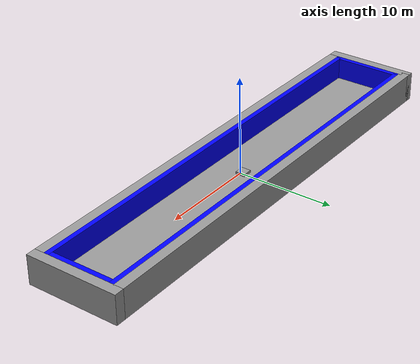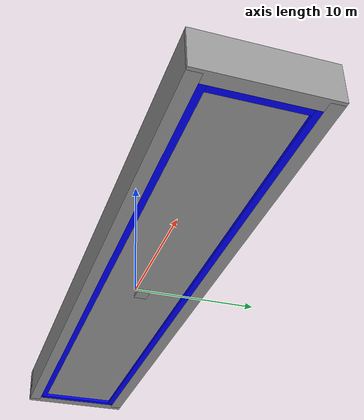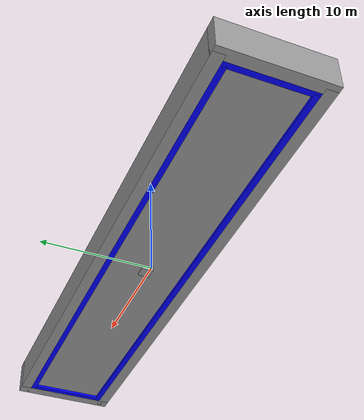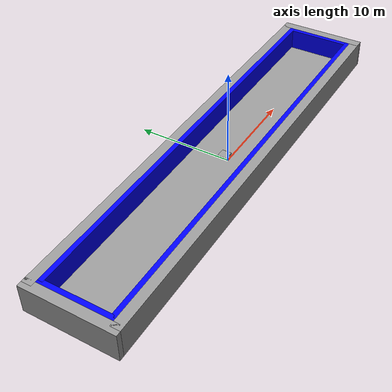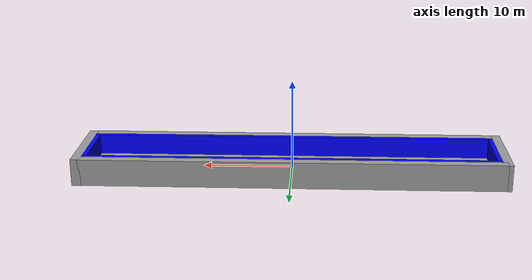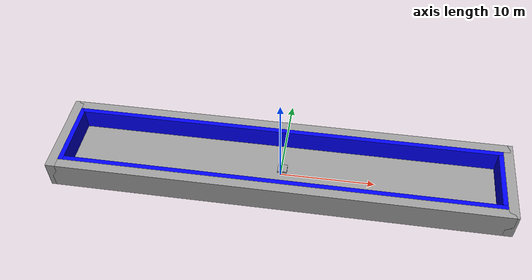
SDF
<?xml version='1.0'?>
<sdf version='1.6'>
  <model name='Pool'>
    <link name='link_0'>
      <pose frame=''>0.166667 0.472222 0 0 -0 0</pose>
      <inertial>
        <mass>1</mass>
        <inertia>
          <ixx>0.166667</ixx>
          <ixy>0</ixy>
          <ixz>0</ixz>
          <iyy>0.166667</iyy>
          <iyz>0</iyz>
          <izz>0.166667</izz>
        </inertia>
        <pose frame=''>0 0 0 0 -0 0</pose>
      </inertial>
      <self_collide>0</self_collide>
      <kinematic>0</kinematic>
      <gravity>1</gravity>
      <visual name='visual'>
        <pose frame=''>0 0 0 0 -0 0</pose>
        <geometry>
          <box>
            <size>45 6.5 0.5</size>
          </box>
        </geometry>
        <material>
          <lighting>1</lighting>
          <script>
            <uri>file://media/materials/scripts/gazebo.material</uri>
            <name>Gazebo/Grey</name>
          </script>
          <ambient>0.3 0.3 0.3 1</ambient>
          <diffuse>0.7 0.7 0.7 1</diffuse>
          <specular>0.01 0.01 0.01 1</specular>
          <emissive>0 0 0 1</emissive>
          <shader type='vertex'>
            <normal_map>__default__</normal_map>
          </shader>
        </material>
        <cast_shadows>1</cast_shadows>
        <transparency>0</transparency>
      </visual>
      <visual name='ModelPreview_0::link_0::visual_1'>
        <pose frame=''>0 0 0 0 -0 0</pose>
        <geometry>
          <box>
            <size>1 1 1</size>
          </box>
        </geometry>
        <material>
          <lighting>1</lighting>
          <script>
            <uri>file://media/materials/scripts/gazebo.material</uri>
            <name>Gazebo/Grey</name>
          </script>
          <ambient>0.7 0.7 0.7 1</ambient>
          <diffuse>0.7 0.7 0.7 1</diffuse>
          <specular>0.7 0.7 0.7 1</specular>
          <emissive>0.7 0.7 0.7 1</emissive>
          <shader type='vertex'>
            <normal_map>__default__</normal_map>
          </shader>
        </material>
        <cast_shadows>1</cast_shadows>
        <transparency>0</transparency>
      </visual>
      <visual name='ModelPreview_0::link_0::visual_2'>
        <pose frame=''>0 0 0 0 -0 0</pose>
        <geometry>
          <box>
            <size>45 6.5 0.5</size>
          </box>
        </geometry>
        <material>
          <lighting>1</lighting>
          <script>
            <uri>file://media/materials/scripts/gazebo.material</uri>
            <name>Gazebo/Grey</name>
          </script>
          <ambient>0.7 0.7 0.7 1</ambient>
          <diffuse>0.7 0.7 0.7 1</diffuse>
          <specular>0.7 0.7 0.7 1</specular>
          <emissive>0.7 0.7 0.7 1</emissive>
          <shader type='pixel'>
            <normal_map>__default__</normal_map>
          </shader>
        </material>
        <cast_shadows>1</cast_shadows>
        <transparency>0</transparency>
      </visual>
      <collision name='collision'>
        <laser_retro>0</laser_retro>
        <max_contacts>10</max_contacts>
        <pose frame=''>0 0 0 0 -0 0</pose>
        <geometry>
          <box>
            <size>45 6.5 0.5</size>
          </box>
        </geometry>
        <surface>
          <friction>
            <ode>
              <mu>1</mu>
              <mu2>1</mu2>
              <fdir1>0 0 0</fdir1>
              <slip1>0</slip1>
              <slip2>0</slip2>
            </ode>
            <torsional>
              <coefficient>1</coefficient>
              <patch_radius>0</patch_radius>
              <surface_radius>0</surface_radius>
              <use_patch_radius>1</use_patch_radius>
              <ode>
                <slip>0</slip>
              </ode>
            </torsional>
          </friction>
          <bounce>
            <restitution_coefficient>0</restitution_coefficient>
            <threshold>1e+06</threshold>
          </bounce>
          <contact>
            <collide_without_contact>0</collide_without_contact>
            <collide_without_contact_bitmask>1</collide_without_contact_bitmask>
            <collide_bitmask>1</collide_bitmask>
            <ode>
              <soft_cfm>0</soft_cfm>
              <soft_erp>0.2</soft_erp>
              <kp>1e+13</kp>
              <kd>1</kd>
              <max_vel>0.01</max_vel>
              <min_depth>0</min_depth>
            </ode>
            <bullet>
              <split_impulse>1</split_impulse>
              <split_impulse_penetration_threshold>-0.01</split_impulse_penetration_threshold>
              <soft_cfm>0</soft_cfm>
              <soft_erp>0.2</soft_erp>
              <kp>1e+13</kp>
              <kd>1</kd>
            </bullet>
          </contact>
        </surface>
      </collision>
    </link>
    <link name='link_1'>
      <pose frame=''>22.6667 -2.77778 0 0 -0 0</pose>
      <inertial>
        <mass>1</mass>
        <inertia>
          <ixx>0.166667</ixx>
          <ixy>0</ixy>
          <ixz>0</ixz>
          <iyy>0.166667</iyy>
          <iyz>0</iyz>
          <izz>0.166667</izz>
        </inertia>
        <pose frame=''>0 0 0 0 -0 0</pose>
      </inertial>
      <self_collide>0</self_collide>
      <kinematic>0</kinematic>
      <visual name='visual'>
        <pose frame=''>0 3.25 1 0 -0 0</pose>
        <geometry>
          <box>
            <size>0.5 6.5 3</size>
          </box>
        </geometry>
        <material>
          <lighting>1</lighting>
          <script>
            <uri>file://media/materials/scripts/gazebo.material</uri>
            <name>Gazebo/Grey</name>
          </script>
          <ambient>0 0 1 1</ambient>
          <diffuse>0 0 1 1</diffuse>
          <specular>0 0 1 1</specular>
          <emissive>0 0 1 1</emissive>
          <shader type='vertex'>
            <normal_map>__default__</normal_map>
          </shader>
        </material>
        <cast_shadows>1</cast_shadows>
        <transparency>0</transparency>
      </visual>
      <collision name='collision'>
        <laser_retro>0</laser_retro>
        <max_contacts>10</max_contacts>
        <pose frame=''>0 3.25 1 0 -0 0</pose>
        <geometry>
          <box>
            <size>0.5 6.5 3</size>
          </box>
        </geometry>
        <surface>
          <friction>
            <ode>
              <mu>1</mu>
              <mu2>1</mu2>
              <fdir1>0 0 0</fdir1>
              <slip1>0</slip1>
              <slip2>0</slip2>
            </ode>
            <torsional>
              <coefficient>1</coefficient>
              <patch_radius>0</patch_radius>
              <surface_radius>0</surface_radius>
              <use_patch_radius>1</use_patch_radius>
              <ode>
                <slip>0</slip>
              </ode>
            </torsional>
          </friction>
          <bounce>
            <restitution_coefficient>0</restitution_coefficient>
            <threshold>1e+06</threshold>
          </bounce>
          <contact>
            <collide_without_contact>0</collide_without_contact>
            <collide_without_contact_bitmask>1</collide_without_contact_bitmask>
            <collide_bitmask>1</collide_bitmask>
            <ode>
              <soft_cfm>0</soft_cfm>
              <soft_erp>0.2</soft_erp>
              <kp>1e+13</kp>
              <kd>1</kd>
              <max_vel>0.01</max_vel>
              <min_depth>0</min_depth>
            </ode>
            <bullet>
              <split_impulse>1</split_impulse>
              <split_impulse_penetration_threshold>-0.01</split_impulse_penetration_threshold>
              <soft_cfm>0</soft_cfm>
              <soft_erp>0.2</soft_erp>
              <kp>1e+13</kp>
              <kd>1</kd>
            </bullet>
          </contact>
        </surface>
      </collision>
    </link>
    <link name='link_10'>
      <pose frame=''>0.166667 5.47222 0 0 -0 0</pose>
      <inertial>
        <mass>1</mass>
        <inertia>
          <ixx>0.166667</ixx>
          <ixy>0</ixy>
          <ixz>0</ixz>
          <iyy>0.166667</iyy>
          <iyz>0</iyz>
          <izz>0.166667</izz>
        </inertia>
        <pose frame=''>0 0 0 0 -0 0</pose>
      </inertial>
      <self_collide>0</self_collide>
      <kinematic>0</kinematic>
      <visual name='visual'>
        <pose frame=''>0 -0.75 1 0 -0 0</pose>
        <geometry>
          <box>
            <size>47 1 3</size>
          </box>
        </geometry>
        <material>
          <lighting>1</lighting>
          <script>
            <uri>file://media/materials/scripts/gazebo.material</uri>
            <name>Gazebo/Grey</name>
          </script>
          <ambient>0.3 0.3 0.3 1</ambient>
          <diffuse>0.7 0.7 0.7 1</diffuse>
          <specular>0.01 0.01 0.01 1</specular>
          <emissive>0 0 0 1</emissive>
          <shader type='vertex'>
            <normal_map>__default__</normal_map>
          </shader>
        </material>
        <cast_shadows>1</cast_shadows>
        <transparency>0</transparency>
      </visual>
      <collision name='collision'>
        <laser_retro>0</laser_retro>
        <max_contacts>10</max_contacts>
        <pose frame=''>0 -0.75 1 0 -0 0</pose>
        <geometry>
          <box>
            <size>47 1 3</size>
          </box>
        </geometry>
        <surface>
          <friction>
            <ode>
              <mu>1</mu>
              <mu2>1</mu2>
              <fdir1>0 0 0</fdir1>
              <slip1>0</slip1>
              <slip2>0</slip2>
            </ode>
            <torsional>
              <coefficient>1</coefficient>
              <patch_radius>0</patch_radius>
              <surface_radius>0</surface_radius>
              <use_patch_radius>1</use_patch_radius>
              <ode>
                <slip>0</slip>
              </ode>
            </torsional>
          </friction>
          <bounce>
            <restitution_coefficient>0</restitution_coefficient>
            <threshold>1e+06</threshold>
          </bounce>
          <contact>
            <collide_without_contact>0</collide_without_contact>
            <collide_without_contact_bitmask>1</collide_without_contact_bitmask>
            <collide_bitmask>1</collide_bitmask>
            <ode>
              <soft_cfm>0</soft_cfm>
              <soft_erp>0.2</soft_erp>
              <kp>1e+13</kp>
              <kd>1</kd>
              <max_vel>0.01</max_vel>
              <min_depth>0</min_depth>
            </ode>
            <bullet>
              <split_impulse>1</split_impulse>
              <split_impulse_penetration_threshold>-0.01</split_impulse_penetration_threshold>
              <soft_cfm>0</soft_cfm>
              <soft_erp>0.2</soft_erp>
              <kp>1e+13</kp>
              <kd>1</kd>
            </bullet>
          </contact>
        </surface>
      </collision>
    </link>
    <link name='link_13'>
      <pose frame=''>0.166667 -4.52778 0 0 -0 0</pose>
      <inertial>
        <mass>1</mass>
        <inertia>
          <ixx>0.166667</ixx>
          <ixy>0</ixy>
          <ixz>0</ixz>
          <iyy>0.166667</iyy>
          <iyz>0</iyz>
          <izz>0.166667</izz>
        </inertia>
        <pose frame=''>0 0 0 0 -0 0</pose>
      </inertial>
      <self_collide>0</self_collide>
      <kinematic>0</kinematic>
      <visual name='visual'>
        <pose frame=''>0 0.75 1 0 -0 0</pose>
        <geometry>
          <box>
            <size>47 1 3</size>
          </box>
        </geometry>
        <material>
          <lighting>1</lighting>
          <script>
            <uri>file://media/materials/scripts/gazebo.material</uri>
            <name>Gazebo/Grey</name>
          </script>
          <ambient>0.3 0.3 0.3 1</ambient>
          <diffuse>0.7 0.7 0.7 1</diffuse>
          <specular>0.01 0.01 0.01 1</specular>
          <emissive>0 0 0 1</emissive>
          <shader type='vertex'>
            <normal_map>__default__</normal_map>
          </shader>
        </material>
        <cast_shadows>1</cast_shadows>
        <transparency>0</transparency>
      </visual>
      <collision name='collision'>
        <laser_retro>0</laser_retro>
        <max_contacts>10</max_contacts>
        <pose frame=''>0 0.75 1 0 -0 0</pose>
        <geometry>
          <box>
            <size>47 1 3</size>
          </box>
        </geometry>
        <surface>
          <friction>
            <ode>
              <mu>1</mu>
              <mu2>1</mu2>
              <fdir1>0 0 0</fdir1>
              <slip1>0</slip1>
              <slip2>0</slip2>
            </ode>
            <torsional>
              <coefficient>1</coefficient>
              <patch_radius>0</patch_radius>
              <surface_radius>0</surface_radius>
              <use_patch_radius>1</use_patch_radius>
              <ode>
                <slip>0</slip>
              </ode>
            </torsional>
          </friction>
          <bounce>
            <restitution_coefficient>0</restitution_coefficient>
            <threshold>1e+06</threshold>
          </bounce>
          <contact>
            <collide_without_contact>0</collide_without_contact>
            <collide_without_contact_bitmask>1</collide_without_contact_bitmask>
            <collide_bitmask>1</collide_bitmask>
            <ode>
              <soft_cfm>0</soft_cfm>
              <soft_erp>0.2</soft_erp>
              <kp>1e+13</kp>
              <kd>1</kd>
              <max_vel>0.01</max_vel>
              <min_depth>0</min_depth>
            </ode>
            <bullet>
              <split_impulse>1</split_impulse>
              <split_impulse_penetration_threshold>-0.01</split_impulse_penetration_threshold>
              <soft_cfm>0</soft_cfm>
              <soft_erp>0.2</soft_erp>
              <kp>1e+13</kp>
              <kd>1</kd>
            </bullet>
          </contact>
        </surface>
      </collision>
    </link>
    <link name='link_3'>
      <pose frame=''>0.166667 3.47222 0 0 -0 0</pose>
      <inertial>
        <mass>1</mass>
        <inertia>
          <ixx>0.166667</ixx>
          <ixy>0</ixy>
          <ixz>0</ixz>
          <iyy>0.166667</iyy>
          <iyz>0</iyz>
          <izz>0.166667</izz>
        </inertia>
        <pose frame=''>0 0 0 0 -0 0</pose>
      </inertial>
      <self_collide>0</self_collide>
      <kinematic>0</kinematic>
      <visual name='visual'>
        <pose frame=''>0 0.5 1 0 -0 0</pose>
        <geometry>
          <box>
            <size>45.5 0.5 3</size>
          </box>
        </geometry>
        <material>
          <lighting>1</lighting>
          <script>
            <uri>file://media/materials/scripts/gazebo.material</uri>
            <name>Gazebo/Grey</name>
          </script>
          <ambient>0 0 1 1</ambient>
          <diffuse>0 0 1 1</diffuse>
          <specular>0 0 1 1</specular>
          <emissive>0 0 1 1</emissive>
          <shader type='vertex'>
            <normal_map>__default__</normal_map>
          </shader>
        </material>
        <cast_shadows>1</cast_shadows>
        <transparency>0</transparency>
      </visual>
      <collision name='collision'>
        <laser_retro>0</laser_retro>
        <max_contacts>10</max_contacts>
        <pose frame=''>0 0.5 1 0 -0 0</pose>
        <geometry>
          <box>
            <size>45.5 0.5 3</size>
          </box>
        </geometry>
        <surface>
          <friction>
            <ode>
              <mu>1</mu>
              <mu2>1</mu2>
              <fdir1>0 0 0</fdir1>
              <slip1>0</slip1>
              <slip2>0</slip2>
            </ode>
            <torsional>
              <coefficient>1</coefficient>
              <patch_radius>0</patch_radius>
              <surface_radius>0</surface_radius>
              <use_patch_radius>1</use_patch_radius>
              <ode>
                <slip>0</slip>
              </ode>
            </torsional>
          </friction>
          <bounce>
            <restitution_coefficient>0</restitution_coefficient>
            <threshold>1e+06</threshold>
          </bounce>
          <contact>
            <collide_without_contact>0</collide_without_contact>
            <collide_without_contact_bitmask>1</collide_without_contact_bitmask>
            <collide_bitmask>1</collide_bitmask>
            <ode>
              <soft_cfm>0</soft_cfm>
              <soft_erp>0.2</soft_erp>
              <kp>1e+13</kp>
              <kd>1</kd>
              <max_vel>0.01</max_vel>
              <min_depth>0</min_depth>
            </ode>
            <bullet>
              <split_impulse>1</split_impulse>
              <split_impulse_penetration_threshold>-0.01</split_impulse_penetration_threshold>
              <soft_cfm>0</soft_cfm>
              <soft_erp>0.2</soft_erp>
              <kp>1e+13</kp>
              <kd>1</kd>
            </bullet>
          </contact>
        </surface>
      </collision>
    </link>
    <link name='link_4'>
      <pose frame=''>-22.8333 0.472222 0 0 -0 0</pose>
      <inertial>
        <mass>1</mass>
        <inertia>
          <ixx>0.166667</ixx>
          <ixy>0</ixy>
          <ixz>0</ixz>
          <iyy>0.166667</iyy>
          <iyz>0</iyz>
          <izz>0.166667</izz>
        </inertia>
        <pose frame=''>0 0 0 0 -0 0</pose>
      </inertial>
      <self_collide>0</self_collide>
      <kinematic>0</kinematic>
      <visual name='visual'>
        <pose frame=''>0.25 0 1 0 -0 0</pose>
        <geometry>
          <box>
            <size>0.5 7.5 3</size>
          </box>
        </geometry>
        <material>
          <lighting>1</lighting>
          <script>
            <uri>file://media/materials/scripts/gazebo.material</uri>
            <name>Gazebo/Grey</name>
          </script>
          <ambient>0 0 1 1</ambient>
          <diffuse>0 0 1 1</diffuse>
          <specular>0 0 1 1</specular>
          <emissive>0 0 0 1</emissive>
          <shader type='vertex'>
            <normal_map>__default__</normal_map>
          </shader>
        </material>
        <cast_shadows>1</cast_shadows>
        <transparency>0</transparency>
      </visual>
      <collision name='collision'>
        <laser_retro>0</laser_retro>
        <max_contacts>10</max_contacts>
        <pose frame=''>0.25 0 1 0 -0 0</pose>
        <geometry>
          <box>
            <size>0.5 7.5 3</size>
          </box>
        </geometry>
        <surface>
          <friction>
            <ode>
              <mu>1</mu>
              <mu2>1</mu2>
              <fdir1>0 0 0</fdir1>
              <slip1>0</slip1>
              <slip2>0</slip2>
            </ode>
            <torsional>
              <coefficient>1</coefficient>
              <patch_radius>0</patch_radius>
              <surface_radius>0</surface_radius>
              <use_patch_radius>1</use_patch_radius>
              <ode>
                <slip>0</slip>
              </ode>
            </torsional>
          </friction>
          <bounce>
            <restitution_coefficient>0</restitution_coefficient>
            <threshold>1e+06</threshold>
          </bounce>
          <contact>
            <collide_without_contact>0</collide_without_contact>
            <collide_without_contact_bitmask>1</collide_without_contact_bitmask>
            <collide_bitmask>1</collide_bitmask>
            <ode>
              <soft_cfm>0</soft_cfm>
              <soft_erp>0.2</soft_erp>
              <kp>1e+13</kp>
              <kd>1</kd>
              <max_vel>0.01</max_vel>
              <min_depth>0</min_depth>
            </ode>
            <bullet>
              <split_impulse>1</split_impulse>
              <split_impulse_penetration_threshold>-0.01</split_impulse_penetration_threshold>
              <soft_cfm>0</soft_cfm>
              <soft_erp>0.2</soft_erp>
              <kp>1e+13</kp>
              <kd>1</kd>
            </bullet>
          </contact>
        </surface>
      </collision>
    </link>
    <link name='link_6'>
      <pose frame=''>0.166667 -3.52778 0 0 -0 0</pose>
      <inertial>
        <mass>1</mass>
        <inertia>
          <ixx>0.166667</ixx>
          <ixy>0</ixy>
          <ixz>0</ixz>
          <iyy>0.166667</iyy>
          <iyz>0</iyz>
          <izz>0.166667</izz>
        </inertia>
        <pose frame=''>0 0 0 0 -0 0</pose>
      </inertial>
      <self_collide>0</self_collide>
      <kinematic>0</kinematic>
      <visual name='visual'>
        <pose frame=''>0 0.5 1 0 -0 0</pose>
        <geometry>
          <box>
            <size>45.5 0.5 3</size>
          </box>
        </geometry>
        <material>
          <lighting>1</lighting>
          <script>
            <uri>file://media/materials/scripts/gazebo.material</uri>
            <name>Gazebo/Grey</name>
          </script>
          <ambient>0 0 1 1</ambient>
          <diffuse>0 0 1 1</diffuse>
          <specular>0 0 1 1</specular>
          <emissive>0 0 1 1</emissive>
          <shader type='vertex'>
            <normal_map>__default__</normal_map>
          </shader>
        </material>
        <cast_shadows>1</cast_shadows>
        <transparency>0</transparency>
      </visual>
      <collision name='collision'>
        <laser_retro>0</laser_retro>
        <max_contacts>10</max_contacts>
        <pose frame=''>0 0.5 1 0 -0 0</pose>
        <geometry>
          <box>
            <size>45.5 0.5 3</size>
          </box>
        </geometry>
        <surface>
          <friction>
            <ode>
              <mu>1</mu>
              <mu2>1</mu2>
              <fdir1>0 0 0</fdir1>
              <slip1>0</slip1>
              <slip2>0</slip2>
            </ode>
            <torsional>
              <coefficient>1</coefficient>
              <patch_radius>0</patch_radius>
              <surface_radius>0</surface_radius>
              <use_patch_radius>1</use_patch_radius>
              <ode>
                <slip>0</slip>
              </ode>
            </torsional>
          </friction>
          <bounce>
            <restitution_coefficient>0</restitution_coefficient>
            <threshold>1e+06</threshold>
          </bounce>
          <contact>
            <collide_without_contact>0</collide_without_contact>
            <collide_without_contact_bitmask>1</collide_without_contact_bitmask>
            <collide_bitmask>1</collide_bitmask>
            <ode>
              <soft_cfm>0</soft_cfm>
              <soft_erp>0.2</soft_erp>
              <kp>1e+13</kp>
              <kd>1</kd>
              <max_vel>0.01</max_vel>
              <min_depth>0</min_depth>
            </ode>
            <bullet>
              <split_impulse>1</split_impulse>
              <split_impulse_penetration_threshold>-0.01</split_impulse_penetration_threshold>
              <soft_cfm>0</soft_cfm>
              <soft_erp>0.2</soft_erp>
              <kp>1e+13</kp>
              <kd>1</kd>
            </bullet>
          </contact>
        </surface>
      </collision>
    </link>
    <link name='link_7'>
      <pose frame=''>-23.8333 0.472222 0 0 -0 0</pose>
      <inertial>
        <mass>1</mass>
        <inertia>
          <ixx>0.166667</ixx>
          <ixy>0</ixy>
          <ixz>0</ixz>
          <iyy>0.166667</iyy>
          <iyz>0</iyz>
          <izz>0.166667</izz>
        </inertia>
        <pose frame=''>0 0 0 0 -0 0</pose>
      </inertial>
      <self_collide>0</self_collide>
      <kinematic>0</kinematic>
      <visual name='visual'>
        <pose frame=''>0.5 0 1 0 -0 0</pose>
        <geometry>
          <box>
            <size>1 9.5 3</size>
          </box>
        </geometry>
        <material>
          <lighting>1</lighting>
          <script>
            <uri>file://media/materials/scripts/gazebo.material</uri>
            <name>Gazebo/Grey</name>
          </script>
          <ambient>0.3 0.3 0.3 1</ambient>
          <diffuse>0.7 0.7 0.7 1</diffuse>
          <specular>0.01 0.01 0.01 1</specular>
          <emissive>0 0 0 1</emissive>
          <shader type='vertex'>
            <normal_map>__default__</normal_map>
          </shader>
        </material>
        <cast_shadows>1</cast_shadows>
        <transparency>0</transparency>
      </visual>
      <collision name='collision'>
        <laser_retro>0</laser_retro>
        <max_contacts>10</max_contacts>
        <pose frame=''>0.5 0 1 0 -0 0</pose>
        <geometry>
          <box>
            <size>1 9.5 3</size>
          </box>
        </geometry>
        <surface>
          <friction>
            <ode>
              <mu>1</mu>
              <mu2>1</mu2>
              <fdir1>0 0 0</fdir1>
              <slip1>0</slip1>
              <slip2>0</slip2>
            </ode>
            <torsional>
              <coefficient>1</coefficient>
              <patch_radius>0</patch_radius>
              <surface_radius>0</surface_radius>
              <use_patch_radius>1</use_patch_radius>
              <ode>
                <slip>0</slip>
              </ode>
            </torsional>
          </friction>
          <bounce>
            <restitution_coefficient>0</restitution_coefficient>
            <threshold>1e+06</threshold>
          </bounce>
          <contact>
            <collide_without_contact>0</collide_without_contact>
            <collide_without_contact_bitmask>1</collide_without_contact_bitmask>
            <collide_bitmask>1</collide_bitmask>
            <ode>
              <soft_cfm>0</soft_cfm>
              <soft_erp>0.2</soft_erp>
              <kp>1e+13</kp>
              <kd>1</kd>
              <max_vel>0.01</max_vel>
              <min_depth>0</min_depth>
            </ode>
            <bullet>
              <split_impulse>1</split_impulse>
              <split_impulse_penetration_threshold>-0.01</split_impulse_penetration_threshold>
              <soft_cfm>0</soft_cfm>
              <soft_erp>0.2</soft_erp>
              <kp>1e+13</kp>
              <kd>1</kd>
            </bullet>
          </contact>
        </surface>
      </collision>
    </link>
    <link name='link_8'>
      <pose frame=''>23.1667 0.472222 0 0 -0 0</pose>
      <inertial>
        <mass>1</mass>
        <inertia>
          <ixx>0.166667</ixx>
          <ixy>0</ixy>
          <ixz>0</ixz>
          <iyy>0.166667</iyy>
          <iyz>0</iyz>
          <izz>0.166667</izz>
        </inertia>
        <pose frame=''>0.25 0 0 0 -0 0</pose>
      </inertial>
      <self_collide>0</self_collide>
      <kinematic>0</kinematic>
      <visual name='visual'>
        <pose frame=''>0.25 0 1 0 -0 0</pose>
        <geometry>
          <box>
            <size>1 9.5 3</size>
          </box>
        </geometry>
        <material>
          <lighting>1</lighting>
          <script>
            <uri>file://media/materials/scripts/gazebo.material</uri>
            <name>Gazebo/Grey</name>
          </script>
          <ambient>0.3 0.3 0.3 1</ambient>
          <diffuse>0.7 0.7 0.7 1</diffuse>
          <specular>0.01 0.01 0.01 1</specular>
          <emissive>0 0 0 1</emissive>
          <shader type='vertex'>
            <normal_map>__default__</normal_map>
          </shader>
        </material>
        <cast_shadows>1</cast_shadows>
        <transparency>0</transparency>
      </visual>
      <collision name='collision'>
        <laser_retro>0</laser_retro>
        <max_contacts>10</max_contacts>
        <pose frame=''>0.25 0 1 0 -0 0</pose>
        <geometry>
          <box>
            <size>1 9.5 3</size>
          </box>
        </geometry>
        <surface>
          <friction>
            <ode>
              <mu>1</mu>
              <mu2>1</mu2>
              <fdir1>0 0 0</fdir1>
              <slip1>0</slip1>
              <slip2>0</slip2>
            </ode>
            <torsional>
              <coefficient>1</coefficient>
              <patch_radius>0</patch_radius>
              <surface_radius>0</surface_radius>
              <use_patch_radius>1</use_patch_radius>
              <ode>
                <slip>0</slip>
              </ode>
            </torsional>
          </friction>
          <bounce>
            <restitution_coefficient>0</restitution_coefficient>
            <threshold>1e+06</threshold>
          </bounce>
          <contact>
            <collide_without_contact>0</collide_without_contact>
            <collide_without_contact_bitmask>1</collide_without_contact_bitmask>
            <collide_bitmask>1</collide_bitmask>
            <ode>
              <soft_cfm>0</soft_cfm>
              <soft_erp>0.2</soft_erp>
              <kp>1e+13</kp>
              <kd>1</kd>
              <max_vel>0.01</max_vel>
              <min_depth>0</min_depth>
            </ode>
            <bullet>
              <split_impulse>1</split_impulse>
              <split_impulse_penetration_threshold>-0.01</split_impulse_penetration_threshold>
              <soft_cfm>0</soft_cfm>
              <soft_erp>0.2</soft_erp>
              <kp>1e+13</kp>
              <kd>1</kd>
            </bullet>
          </contact>
        </surface>
      </collision>
    </link>
    <joint name='link_0_JOINT_0' type='fixed'>
      <parent>link_0</parent>
      <child>link_1</child>
      <pose frame=''>0 0 0 0 -0 0</pose>
      <physics>
        <ode>
          <limit>
            <cfm>0</cfm>
            <erp>0.2</erp>
          </limit>
          <suspension>
            <cfm>0</cfm>
            <erp>0.2</erp>
          </suspension>
        </ode>
      </physics>
    </joint>
    <joint name='link_0_JOINT_1' type='fixed'>
      <parent>link_0</parent>
      <child>link_3</child>
      <pose frame=''>0 0 0 0 -0 0</pose>
      <physics>
        <ode>
          <limit>
            <cfm>0</cfm>
            <erp>0.2</erp>
          </limit>
          <suspension>
            <cfm>0</cfm>
            <erp>0.2</erp>
          </suspension>
        </ode>
      </physics>
    </joint>
    <joint name='link_0_JOINT_2' type='fixed'>
      <parent>link_0</parent>
      <child>link_4</child>
      <pose frame=''>0 0 0 0 -0 0</pose>
      <physics>
        <ode>
          <limit>
            <cfm>0</cfm>
            <erp>0.2</erp>
          </limit>
          <suspension>
            <cfm>0</cfm>
            <erp>0.2</erp>
          </suspension>
        </ode>
      </physics>
    </joint>
    <joint name='link_7_JOINT_3' type='fixed'>
      <parent>link_7</parent>
      <child>link_4</child>
      <pose frame=''>0 0 0 0 -0 0</pose>
      <physics>
        <ode>
          <limit>
            <cfm>0</cfm>
            <erp>0.2</erp>
          </limit>
          <suspension>
            <cfm>0</cfm>
            <erp>0.2</erp>
          </suspension>
        </ode>
      </physics>
    </joint>
    <static>1</static>
  </model>
</sdf>
